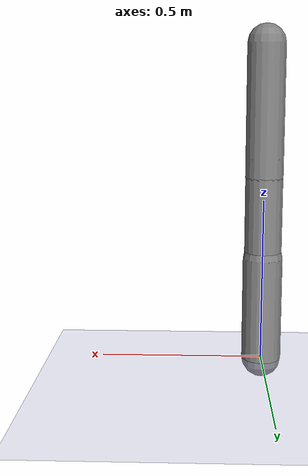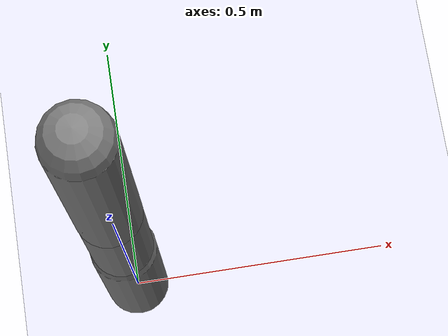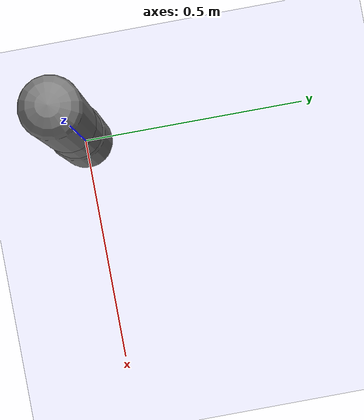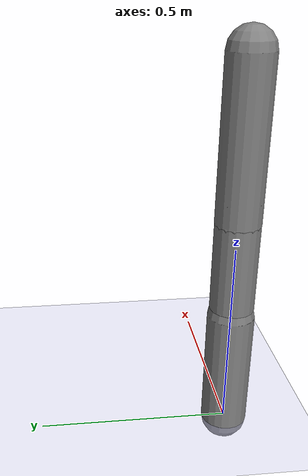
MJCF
<?xml version='1.0' encoding='UTF-8'?>
<mujoco model="robot_model">
  <worldbody>
    <light name="light" pos="0 -3 10" dir="0 0.5 -1" diffuse=".8 .8 .8" specular="0.1 0.1 0.1"/>
    <geom name="floor" type="plane" size="10.0 10.0 0.1" pos="0 0 0" rgba="0.8 0.8 1 1"/>
    <body name="limb0" pos="0 0 0">
      <geom type="capsule" fromto="0 0 0 0 0 0.3193964573656493" size="0.06092897073994531" density="1051.3805924754242"/>
      <site type="sphere" size="0.01" name="limb0_site0" pos="0 0 0.017613637405845664"/>
      <freejoint name="limb0_root"/>
      <body name="limb1" pos="0 0 0.017613637405845664">
        <geom type="capsule" fromto="0 0 0 0 0 0.3914242107247179" size="0.044004021038626155" density="550.3208586932827"/>
        <site type="sphere" size="0.01" name="limb1_site0" pos="0 0 0.16548815704126751"/>
        <body name="limb2" pos="0 0 0.16548815704126751">
          <geom type="capsule" fromto="0 0 0 0 0 0.2730523163219149" size="0.026002490532213443" density="935.4378388596162"/>
          <site type="sphere" size="0.01" name="limb2_site0" pos="0 0 0.13954774787648755"/>
          <site type="sphere" size="0.01" name="limb2_site1" pos="0 0 0.059040297760721026"/>
          <site type="sphere" size="0.01" name="limb2_site2" pos="0 0 0.10515111847428628"/>
          <body name="limb3" pos="0 0 0.13954774787648755">
            <geom type="capsule" fromto="0 0 0 0 0 0.17490102788803924" size="0.03566499332320104" density="676.7685324573865"/>
            <site type="sphere" size="0.01" name="limb3_site0" pos="0 0 0.01875066844564263"/>
            <site type="sphere" size="0.01" name="limb3_site1" pos="0 0 0.11271256589237819"/>
            <site type="sphere" size="0.01" name="limb3_site2" pos="0 0 0.10733972335891297"/>
            <body name="limb4" pos="0 0 0.01875066844564263">
              <geom type="capsule" fromto="0 0 0 0 0 0.288363954166303" size="0.05696867586027296" density="955.007073761784"/>
              <joint name="joint_limb3_limb4_0" type="hinge" axis="1 0 0" range="-30.45435584329415 30.45435584329415" damping="5.0"/>
            </body>
            <body name="limb5" pos="0 0 0.11271256589237819">
              <geom type="capsule" fromto="0 0 0 0 0 0.3719245845938335" size="0.05537798694753174" density="1079.3890588915476"/>
              <joint name="joint_limb3_limb5_0" type="hinge" axis="0 1 0" range="-71.65781941249968 71.65781941249968" damping="5.0"/>
            </body>
            <body name="limb6" pos="0 0 0.10733972335891297">
              <geom type="capsule" fromto="0 0 0 0 0 0.27527446646365" size="0.05448471939630512" density="1113.7920879733144"/>
              <joint name="joint_limb3_limb6_0" type="hinge" axis="0 1 0" range="-102.93561258065814 102.93561258065814" damping="5.0"/>
            </body>
            <joint name="joint_limb2_limb3_0" type="hinge" axis="0 0 1" range="-109.12094095005791 109.12094095005791" damping="5.0"/>
          </body>
          <body name="limb7" pos="0 0 0.059040297760721026">
            <geom type="capsule" fromto="0 0 0 0 0 0.23561014985972403" size="0.047700725273198935" density="818.2628031390111"/>
            <joint name="joint_limb2_limb7_0" type="hinge" axis="1 0 0" range="-23.860412992096883 23.860412992096883" damping="5.0"/>
          </body>
          <body name="limb8" pos="0 0 0.10515111847428628">
            <geom type="capsule" fromto="0 0 0 0 0 0.45909365883727027" size="0.03825722483526224" density="1068.1465637538238"/>
            <site type="sphere" size="0.01" name="limb8_site0" pos="0 0 0.08319062940447787"/>
            <site type="sphere" size="0.01" name="limb8_site1" pos="0 0 0.2242665972539052"/>
            <site type="sphere" size="0.01" name="limb8_site2" pos="0 0 0.28338572373832815"/>
            <body name="limb9" pos="0 0 0.08319062940447787">
              <geom type="capsule" fromto="0 0 0 0 0 0.17846796478730878" size="0.03628777433918427" density="537.4216120654676"/>
              <joint name="joint_limb8_limb9_0" type="hinge" axis="0 0 1" range="-31.263285511131826 31.263285511131826" damping="5.0"/>
            </body>
            <body name="limb10" pos="0 0 0.2242665972539052">
              <geom type="capsule" fromto="0 0 0 0 0 0.13976444717305633" size="0.05331987856753682" density="760.4676284414097"/>
              <joint name="joint_limb8_limb10_0" type="hinge" axis="0 1 0" range="-82.02724083835624 82.02724083835624" damping="5.0"/>
            </body>
            <body name="limb11" pos="0 0 0.28338572373832815">
              <geom type="capsule" fromto="0 0 0 0 0 0.4001586377453103" size="0.05749372574915872" density="859.5731983063727"/>
              <joint name="joint_limb8_limb11_0" type="hinge" axis="1 0 0" range="-116.47618088753546 116.47618088753546" damping="5.0"/>
            </body>
            <joint name="joint_limb2_limb8_0" type="hinge" axis="0 0 1" range="-79.20620110783646 79.20620110783646" damping="5.0"/>
          </body>
          <joint name="joint_limb1_limb2_0" type="hinge" axis="0 1 0" range="-83.31843992741165 83.31843992741165" damping="5.0"/>
        </body>
        <joint name="joint_limb0_limb1_0" type="hinge" axis="1 0 0" range="-47.49693679060381 47.49693679060381" damping="5.0"/>
      </body>
    </body>
  </worldbody>
  <actuator>
    <position name="position_actuator_joint_limb0_limb1_0" joint="joint_limb0_limb1_0" gear="1.486149522313389" inheritrange="1" kp="10.0"/>
    <position name="position_actuator_joint_limb1_limb2_0" joint="joint_limb1_limb2_0" gear="1.9511539287405149" inheritrange="1" kp="10.0"/>
    <position name="position_actuator_joint_limb2_limb3_0" joint="joint_limb2_limb3_0" gear="1.6633459137090343" inheritrange="1" kp="10.0"/>
    <position name="position_actuator_joint_limb3_limb4_0" joint="joint_limb3_limb4_0" gear="0.8028611712941756" inheritrange="1" kp="10.0"/>
    <position name="position_actuator_joint_limb3_limb5_0" joint="joint_limb3_limb5_0" gear="1.3901652766338592" inheritrange="1" kp="10.0"/>
    <position name="position_actuator_joint_limb3_limb6_0" joint="joint_limb3_limb6_0" gear="1.247084082375872" inheritrange="1" kp="10.0"/>
    <position name="position_actuator_joint_limb2_limb7_0" joint="joint_limb2_limb7_0" gear="1.5529242145789843" inheritrange="1" kp="10.0"/>
    <position name="position_actuator_joint_limb2_limb8_0" joint="joint_limb2_limb8_0" gear="1.6488249713229473" inheritrange="1" kp="10.0"/>
    <position name="position_actuator_joint_limb8_limb9_0" joint="joint_limb8_limb9_0" gear="0.5298661232561322" inheritrange="1" kp="10.0"/>
    <position name="position_actuator_joint_limb8_limb10_0" joint="joint_limb8_limb10_0" gear="1.256021723602395" inheritrange="1" kp="10.0"/>
    <position name="position_actuator_joint_limb8_limb11_0" joint="joint_limb8_limb11_0" gear="0.8399390950387051" inheritrange="1" kp="10.0"/>
  </actuator>
</mujoco>
